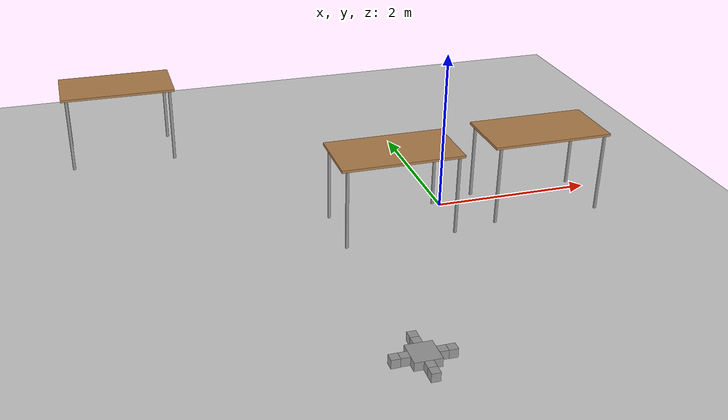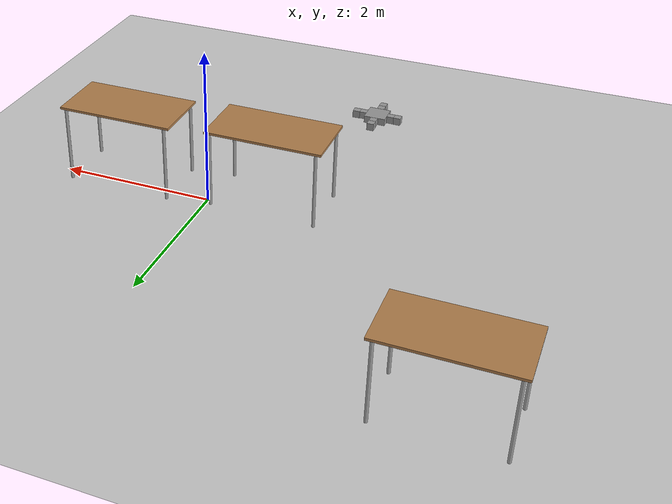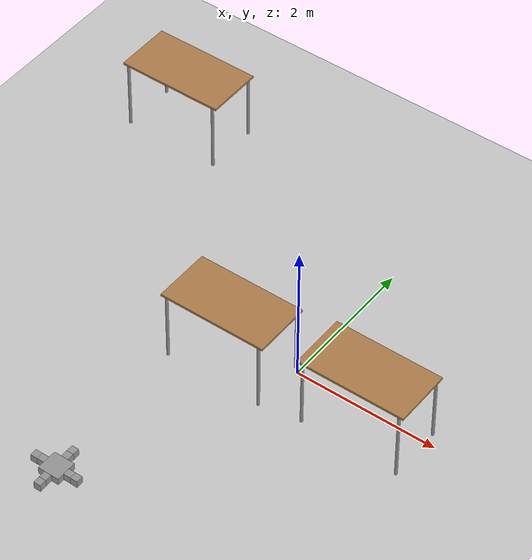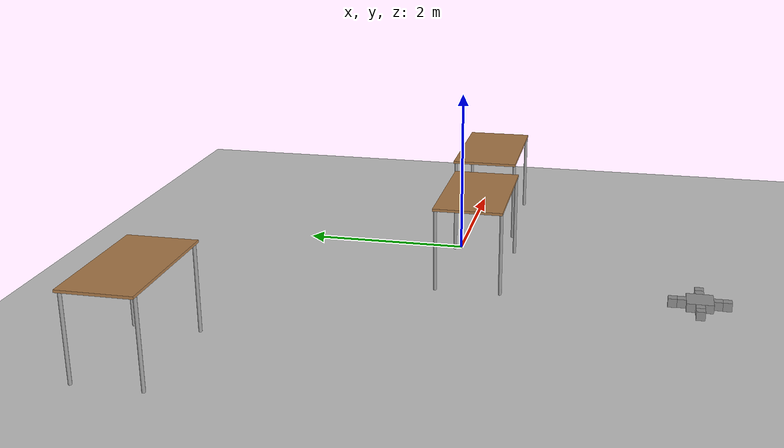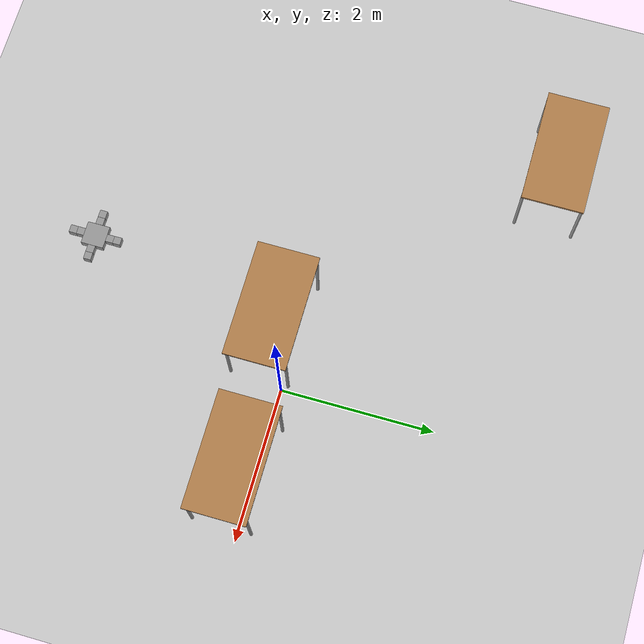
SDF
<sdf version="1.6">
 <world name="default">
  <model name="ground_plane">
   <static>1</static>
   <link name="link">
    <collision name="collision">
     <geometry><plane><normal>0 0 1</normal><size>100 100</size></plane></geometry>
     <surface>
      <contact><collide_bitmask>65535</collide_bitmask></contact>
      <friction><ode><mu>100</mu><mu2>50</mu2></ode></friction>
     </surface>
    </collision>
    <visual name="visual">
     <cast_shadows>0</cast_shadows>
     <geometry><plane><normal>0 0 1</normal><size>100 100</size></plane></geometry>
     <material>
      <script><uri>file://media/materials/scripts/gazebo.material</uri><name>Gazebo/Grey</name></script>
     </material>
    </visual>
   </link>
  </model>
  <model name="myLegged">
   <link name="link_0">
    <pose>0 0 0.044444 0 -0 0</pose>
    <inertial>
     <mass>1</mass>
     <inertia>
      <ixx>0.166667</ixx>
      <ixy>0</ixy>
      <ixz>0</ixz>
      <iyy>0.166667</iyy>
      <iyz>0</iyz>
      <izz>0.166667</izz>
     </inertia>
    </inertial>
    <visual name="visual">
     <geometry><box><size>0.3 0.3 0.1</size></box></geometry>
     <material>
      <lighting>1</lighting>
      <script><uri>file://media/materials/scripts/gazebo.material</uri><name>Gazebo/Grey</name></script>
      <shader type="pixel"><normal_map>__default__</normal_map></shader>
      <ambient>0.3 0.3 0.3 1</ambient>
      <diffuse>0.7 0.7 0.7 1</diffuse>
      <specular>0.01 0.01 0.01 1</specular>
      <emissive>0 0 0 1</emissive>
     </material>
    </visual>
    <collision name="collision">
     <geometry><box><size>0.3 0.3 0.1</size></box></geometry>
     <surface>
      <friction>
       <ode><mu>1</mu><mu2>1</mu2><fdir1>0 0 0</fdir1><slip1>0</slip1><slip2>0</slip2></ode>
       <torsional>
        <coefficient>1</coefficient>
        <patch_radius>0</patch_radius>
        <surface_radius>0</surface_radius>
        <use_patch_radius>1</use_patch_radius>
        <ode><slip>0</slip></ode>
       </torsional>
      </friction>
      <bounce><restitution_coefficient>0</restitution_coefficient><threshold>1e+06</threshold></bounce>
      <contact>
       <collide_without_contact>0</collide_without_contact>
       <collide_without_contact_bitmask>1</collide_without_contact_bitmask>
       <collide_bitmask>1</collide_bitmask>
       <ode>
        <soft_cfm>0</soft_cfm>
        <soft_erp>0.2</soft_erp>
        <kp>1e+13</kp>
        <kd>1</kd>
        <max_vel>0.01</max_vel>
        <min_depth>0</min_depth>
       </ode>
       <bullet>
        <split_impulse>1</split_impulse>
        <split_impulse_penetration_threshold>-0.01</split_impulse_penetration_threshold>
        <soft_cfm>0</soft_cfm>
        <soft_erp>0.2</soft_erp>
        <kp>1e+13</kp>
        <kd>1</kd>
       </bullet>
      </contact>
     </surface>
    </collision>
   </link>
   <link name="link_1">
    <pose>0 -0.2 0.044444 0 -0 0</pose>
    <inertial>
     <mass>1</mass>
     <inertia>
      <ixx>0.166667</ixx>
      <ixy>0</ixy>
      <ixz>0</ixz>
      <iyy>0.166667</iyy>
      <iyz>0</iyz>
      <izz>0.166667</izz>
     </inertia>
    </inertial>
    <visual name="visual">
     <geometry><box><size>0.1 0.1 0.1</size></box></geometry>
     <material>
      <lighting>1</lighting>
      <script><uri>file://media/materials/scripts/gazebo.material</uri><name>Gazebo/Grey</name></script>
      <shader type="pixel"><normal_map>__default__</normal_map></shader>
      <ambient>0.3 0.3 0.3 1</ambient>
      <diffuse>0.7 0.7 0.7 1</diffuse>
      <specular>0.01 0.01 0.01 1</specular>
      <emissive>0 0 0 1</emissive>
     </material>
    </visual>
    <collision name="collision">
     <geometry><box><size>0.1 0.1 0.1</size></box></geometry>
     <surface>
      <friction>
       <ode><mu>1</mu><mu2>1</mu2><fdir1>0 0 0</fdir1><slip1>0</slip1><slip2>0</slip2></ode>
       <torsional>
        <coefficient>1</coefficient>
        <patch_radius>0</patch_radius>
        <surface_radius>0</surface_radius>
        <use_patch_radius>1</use_patch_radius>
        <ode><slip>0</slip></ode>
       </torsional>
      </friction>
      <bounce><restitution_coefficient>0</restitution_coefficient><threshold>1e+06</threshold></bounce>
      <contact>
       <collide_without_contact>0</collide_without_contact>
       <collide_without_contact_bitmask>1</collide_without_contact_bitmask>
       <collide_bitmask>1</collide_bitmask>
       <ode>
        <soft_cfm>0</soft_cfm>
        <soft_erp>0.2</soft_erp>
        <kp>1e+13</kp>
        <kd>1</kd>
        <max_vel>0.01</max_vel>
        <min_depth>0</min_depth>
       </ode>
       <bullet>
        <split_impulse>1</split_impulse>
        <split_impulse_penetration_threshold>-0.01</split_impulse_penetration_threshold>
        <soft_cfm>0</soft_cfm>
        <soft_erp>0.2</soft_erp>
        <kp>1e+13</kp>
        <kd>1</kd>
       </bullet>
      </contact>
     </surface>
    </collision>
   </link>
   <link name="link_1_clone">
    <pose>-0.2 0 0.044444 0 -0 0</pose>
    <inertial>
     <mass>1</mass>
     <inertia>
      <ixx>0.166667</ixx>
      <ixy>0</ixy>
      <ixz>0</ixz>
      <iyy>0.166667</iyy>
      <iyz>0</iyz>
      <izz>0.166667</izz>
     </inertia>
    </inertial>
    <visual name="visual">
     <geometry><box><size>0.1 0.1 0.1</size></box></geometry>
     <material>
      <lighting>1</lighting>
      <script><uri>file://media/materials/scripts/gazebo.material</uri><name>Gazebo/Grey</name></script>
      <shader type="pixel"><normal_map>__default__</normal_map></shader>
      <ambient>0.3 0.3 0.3 1</ambient>
      <diffuse>0.7 0.7 0.7 1</diffuse>
      <specular>0.01 0.01 0.01 1</specular>
      <emissive>0 0 0 1</emissive>
     </material>
    </visual>
    <collision name="collision">
     <geometry><box><size>0.1 0.1 0.1</size></box></geometry>
     <surface>
      <friction>
       <ode><mu>1</mu><mu2>1</mu2><fdir1>0 0 0</fdir1><slip1>0</slip1><slip2>0</slip2></ode>
       <torsional>
        <coefficient>1</coefficient>
        <patch_radius>0</patch_radius>
        <surface_radius>0</surface_radius>
        <use_patch_radius>1</use_patch_radius>
        <ode><slip>0</slip></ode>
       </torsional>
      </friction>
      <bounce><restitution_coefficient>0</restitution_coefficient><threshold>1e+06</threshold></bounce>
      <contact>
       <collide_without_contact>0</collide_without_contact>
       <collide_without_contact_bitmask>1</collide_without_contact_bitmask>
       <collide_bitmask>1</collide_bitmask>
       <ode>
        <soft_cfm>0</soft_cfm>
        <soft_erp>0.2</soft_erp>
        <kp>1e+13</kp>
        <kd>1</kd>
        <max_vel>0.01</max_vel>
        <min_depth>0</min_depth>
       </ode>
       <bullet>
        <split_impulse>1</split_impulse>
        <split_impulse_penetration_threshold>-0.01</split_impulse_penetration_threshold>
        <soft_cfm>0</soft_cfm>
        <soft_erp>0.2</soft_erp>
        <kp>1e+13</kp>
        <kd>1</kd>
       </bullet>
      </contact>
     </surface>
    </collision>
   </link>
   <link name="link_1_clone_0">
    <pose>0.2 0 0.044444 0 -0 0</pose>
    <inertial>
     <mass>1</mass>
     <inertia>
      <ixx>0.166667</ixx>
      <ixy>0</ixy>
      <ixz>0</ixz>
      <iyy>0.166667</iyy>
      <iyz>0</iyz>
      <izz>0.166667</izz>
     </inertia>
    </inertial>
    <visual name="visual">
     <geometry><box><size>0.1 0.1 0.1</size></box></geometry>
     <material>
      <lighting>1</lighting>
      <script><uri>file://media/materials/scripts/gazebo.material</uri><name>Gazebo/Grey</name></script>
      <shader type="pixel"><normal_map>__default__</normal_map></shader>
      <ambient>0.3 0.3 0.3 1</ambient>
      <diffuse>0.7 0.7 0.7 1</diffuse>
      <specular>0.01 0.01 0.01 1</specular>
      <emissive>0 0 0 1</emissive>
     </material>
    </visual>
    <collision name="collision">
     <geometry><box><size>0.1 0.1 0.1</size></box></geometry>
     <surface>
      <friction>
       <ode><mu>1</mu><mu2>1</mu2><fdir1>0 0 0</fdir1><slip1>0</slip1><slip2>0</slip2></ode>
       <torsional>
        <coefficient>1</coefficient>
        <patch_radius>0</patch_radius>
        <surface_radius>0</surface_radius>
        <use_patch_radius>1</use_patch_radius>
        <ode><slip>0</slip></ode>
       </torsional>
      </friction>
      <bounce><restitution_coefficient>0</restitution_coefficient><threshold>1e+06</threshold></bounce>
      <contact>
       <collide_without_contact>0</collide_without_contact>
       <collide_without_contact_bitmask>1</collide_without_contact_bitmask>
       <collide_bitmask>1</collide_bitmask>
       <ode>
        <soft_cfm>0</soft_cfm>
        <soft_erp>0.2</soft_erp>
        <kp>1e+13</kp>
        <kd>1</kd>
        <max_vel>0.01</max_vel>
        <min_depth>0</min_depth>
       </ode>
       <bullet>
        <split_impulse>1</split_impulse>
        <split_impulse_penetration_threshold>-0.01</split_impulse_penetration_threshold>
        <soft_cfm>0</soft_cfm>
        <soft_erp>0.2</soft_erp>
        <kp>1e+13</kp>
        <kd>1</kd>
       </bullet>
      </contact>
     </surface>
    </collision>
   </link>
   <link name="link_1_clone_1">
    <pose>0 0.2 0.044444 0 -0 0</pose>
    <inertial>
     <mass>1</mass>
     <inertia>
      <ixx>0.166667</ixx>
      <ixy>0</ixy>
      <ixz>0</ixz>
      <iyy>0.166667</iyy>
      <iyz>0</iyz>
      <izz>0.166667</izz>
     </inertia>
    </inertial>
    <visual name="visual">
     <geometry><box><size>0.1 0.1 0.1</size></box></geometry>
     <material>
      <lighting>1</lighting>
      <script><uri>file://media/materials/scripts/gazebo.material</uri><name>Gazebo/Grey</name></script>
      <shader type="pixel"><normal_map>__default__</normal_map></shader>
      <ambient>0.3 0.3 0.3 1</ambient>
      <diffuse>0.7 0.7 0.7 1</diffuse>
      <specular>0.01 0.01 0.01 1</specular>
      <emissive>0 0 0 1</emissive>
     </material>
    </visual>
    <collision name="collision">
     <geometry><box><size>0.1 0.1 0.1</size></box></geometry>
     <surface>
      <friction>
       <ode><mu>1</mu><mu2>1</mu2><fdir1>0 0 0</fdir1><slip1>0</slip1><slip2>0</slip2></ode>
       <torsional>
        <coefficient>1</coefficient>
        <patch_radius>0</patch_radius>
        <surface_radius>0</surface_radius>
        <use_patch_radius>1</use_patch_radius>
        <ode><slip>0</slip></ode>
       </torsional>
      </friction>
      <bounce><restitution_coefficient>0</restitution_coefficient><threshold>1e+06</threshold></bounce>
      <contact>
       <collide_without_contact>0</collide_without_contact>
       <collide_without_contact_bitmask>1</collide_without_contact_bitmask>
       <collide_bitmask>1</collide_bitmask>
       <ode>
        <soft_cfm>0</soft_cfm>
        <soft_erp>0.2</soft_erp>
        <kp>1e+13</kp>
        <kd>1</kd>
        <max_vel>0.01</max_vel>
        <min_depth>0</min_depth>
       </ode>
       <bullet>
        <split_impulse>1</split_impulse>
        <split_impulse_penetration_threshold>-0.01</split_impulse_penetration_threshold>
        <soft_cfm>0</soft_cfm>
        <soft_erp>0.2</soft_erp>
        <kp>1e+13</kp>
        <kd>1</kd>
       </bullet>
      </contact>
     </surface>
    </collision>
   </link>
   <link name="link_2">
    <pose>0 -0.3 -0.055556 0 -0 0</pose>
    <inertial>
     <mass>1</mass>
     <inertia>
      <ixx>0.166667</ixx>
      <ixy>0</ixy>
      <ixz>0</ixz>
      <iyy>0.166667</iyy>
      <iyz>0</iyz>
      <izz>0.166667</izz>
     </inertia>
    </inertial>
    <visual name="visual">
     <geometry><box><size>0.1 0.1 0.3</size></box></geometry>
     <material>
      <lighting>1</lighting>
      <script><uri>file://media/materials/scripts/gazebo.material</uri><name>Gazebo/Grey</name></script>
      <shader type="pixel"><normal_map>__default__</normal_map></shader>
      <ambient>0.3 0.3 0.3 1</ambient>
      <diffuse>0.7 0.7 0.7 1</diffuse>
      <specular>0.01 0.01 0.01 1</specular>
      <emissive>0 0 0 1</emissive>
     </material>
    </visual>
    <collision name="collision">
     <geometry><box><size>0.1 0.1 0.3</size></box></geometry>
     <surface>
      <friction>
       <ode><mu>1</mu><mu2>1</mu2><fdir1>0 0 0</fdir1><slip1>0</slip1><slip2>0</slip2></ode>
       <torsional>
        <coefficient>1</coefficient>
        <patch_radius>0</patch_radius>
        <surface_radius>0</surface_radius>
        <use_patch_radius>1</use_patch_radius>
        <ode><slip>0</slip></ode>
       </torsional>
      </friction>
      <bounce><restitution_coefficient>0</restitution_coefficient><threshold>1e+06</threshold></bounce>
      <contact>
       <collide_without_contact>0</collide_without_contact>
       <collide_without_contact_bitmask>1</collide_without_contact_bitmask>
       <collide_bitmask>1</collide_bitmask>
       <ode>
        <soft_cfm>0</soft_cfm>
        <soft_erp>0.2</soft_erp>
        <kp>1e+13</kp>
        <kd>1</kd>
        <max_vel>0.01</max_vel>
        <min_depth>0</min_depth>
       </ode>
       <bullet>
        <split_impulse>1</split_impulse>
        <split_impulse_penetration_threshold>-0.01</split_impulse_penetration_threshold>
        <soft_cfm>0</soft_cfm>
        <soft_erp>0.2</soft_erp>
        <kp>1e+13</kp>
        <kd>1</kd>
       </bullet>
      </contact>
     </surface>
    </collision>
   </link>
   <link name="link_2_clone">
    <pose>-0.3 0 -0.055556 0 -0 0</pose>
    <inertial>
     <mass>1</mass>
     <inertia>
      <ixx>0.166667</ixx>
      <ixy>0</ixy>
      <ixz>0</ixz>
      <iyy>0.166667</iyy>
      <iyz>0</iyz>
      <izz>0.166667</izz>
     </inertia>
    </inertial>
    <visual name="visual">
     <geometry><box><size>0.1 0.1 0.3</size></box></geometry>
     <material>
      <lighting>1</lighting>
      <script><uri>file://media/materials/scripts/gazebo.material</uri><name>Gazebo/Grey</name></script>
      <shader type="pixel"><normal_map>__default__</normal_map></shader>
      <ambient>0.3 0.3 0.3 1</ambient>
      <diffuse>0.7 0.7 0.7 1</diffuse>
      <specular>0.01 0.01 0.01 1</specular>
      <emissive>0 0 0 1</emissive>
     </material>
    </visual>
    <collision name="collision">
     <geometry><box><size>0.1 0.1 0.3</size></box></geometry>
     <surface>
      <friction>
       <ode><mu>1</mu><mu2>1</mu2><fdir1>0 0 0</fdir1><slip1>0</slip1><slip2>0</slip2></ode>
       <torsional>
        <coefficient>1</coefficient>
        <patch_radius>0</patch_radius>
        <surface_radius>0</surface_radius>
        <use_patch_radius>1</use_patch_radius>
        <ode><slip>0</slip></ode>
       </torsional>
      </friction>
      <bounce><restitution_coefficient>0</restitution_coefficient><threshold>1e+06</threshold></bounce>
      <contact>
       <collide_without_contact>0</collide_without_contact>
       <collide_without_contact_bitmask>1</collide_without_contact_bitmask>
       <collide_bitmask>1</collide_bitmask>
       <ode>
        <soft_cfm>0</soft_cfm>
        <soft_erp>0.2</soft_erp>
        <kp>1e+13</kp>
        <kd>1</kd>
        <max_vel>0.01</max_vel>
        <min_depth>0</min_depth>
       </ode>
       <bullet>
        <split_impulse>1</split_impulse>
        <split_impulse_penetration_threshold>-0.01</split_impulse_penetration_threshold>
        <soft_cfm>0</soft_cfm>
        <soft_erp>0.2</soft_erp>
        <kp>1e+13</kp>
        <kd>1</kd>
       </bullet>
      </contact>
     </surface>
    </collision>
   </link>
   <link name="link_2_clone_0">
    <pose>0 0.3 -0.055556 0 -0 0</pose>
    <inertial>
     <mass>1</mass>
     <inertia>
      <ixx>0.166667</ixx>
      <ixy>0</ixy>
      <ixz>0</ixz>
      <iyy>0.166667</iyy>
      <iyz>0</iyz>
      <izz>0.166667</izz>
     </inertia>
    </inertial>
    <visual name="visual">
     <geometry><box><size>0.1 0.1 0.3</size></box></geometry>
     <material>
      <lighting>1</lighting>
      <script><uri>file://media/materials/scripts/gazebo.material</uri><name>Gazebo/Grey</name></script>
      <shader type="pixel"><normal_map>__default__</normal_map></shader>
      <ambient>0.3 0.3 0.3 1</ambient>
      <diffuse>0.7 0.7 0.7 1</diffuse>
      <specular>0.01 0.01 0.01 1</specular>
      <emissive>0 0 0 1</emissive>
     </material>
    </visual>
    <collision name="collision">
     <geometry><box><size>0.1 0.1 0.3</size></box></geometry>
     <surface>
      <friction>
       <ode><mu>1</mu><mu2>1</mu2><fdir1>0 0 0</fdir1><slip1>0</slip1><slip2>0</slip2></ode>
       <torsional>
        <coefficient>1</coefficient>
        <patch_radius>0</patch_radius>
        <surface_radius>0</surface_radius>
        <use_patch_radius>1</use_patch_radius>
        <ode><slip>0</slip></ode>
       </torsional>
      </friction>
      <bounce><restitution_coefficient>0</restitution_coefficient><threshold>1e+06</threshold></bounce>
      <contact>
       <collide_without_contact>0</collide_without_contact>
       <collide_without_contact_bitmask>1</collide_without_contact_bitmask>
       <collide_bitmask>1</collide_bitmask>
       <ode>
        <soft_cfm>0</soft_cfm>
        <soft_erp>0.2</soft_erp>
        <kp>1e+13</kp>
        <kd>1</kd>
        <max_vel>0.01</max_vel>
        <min_depth>0</min_depth>
       </ode>
       <bullet>
        <split_impulse>1</split_impulse>
        <split_impulse_penetration_threshold>-0.01</split_impulse_penetration_threshold>
        <soft_cfm>0</soft_cfm>
        <soft_erp>0.2</soft_erp>
        <kp>1e+13</kp>
        <kd>1</kd>
       </bullet>
      </contact>
     </surface>
    </collision>
   </link>
   <link name="link_2_clone_1">
    <pose>0.3 0 -0.055556 0 -0 0</pose>
    <inertial>
     <mass>1</mass>
     <inertia>
      <ixx>0.166667</ixx>
      <ixy>0</ixy>
      <ixz>0</ixz>
      <iyy>0.166667</iyy>
      <iyz>0</iyz>
      <izz>0.166667</izz>
     </inertia>
    </inertial>
    <visual name="visual">
     <geometry><box><size>0.1 0.1 0.3</size></box></geometry>
     <material>
      <lighting>1</lighting>
      <script><uri>file://media/materials/scripts/gazebo.material</uri><name>Gazebo/Grey</name></script>
      <shader type="pixel"><normal_map>__default__</normal_map></shader>
      <ambient>0.3 0.3 0.3 1</ambient>
      <diffuse>0.7 0.7 0.7 1</diffuse>
      <specular>0.01 0.01 0.01 1</specular>
      <emissive>0 0 0 1</emissive>
     </material>
    </visual>
    <collision name="collision">
     <geometry><box><size>0.1 0.1 0.3</size></box></geometry>
     <surface>
      <friction>
       <ode><mu>1</mu><mu2>1</mu2><fdir1>0 0 0</fdir1><slip1>0</slip1><slip2>0</slip2></ode>
       <torsional>
        <coefficient>1</coefficient>
        <patch_radius>0</patch_radius>
        <surface_radius>0</surface_radius>
        <use_patch_radius>1</use_patch_radius>
        <ode><slip>0</slip></ode>
       </torsional>
      </friction>
      <bounce><restitution_coefficient>0</restitution_coefficient><threshold>1e+06</threshold></bounce>
      <contact>
       <collide_without_contact>0</collide_without_contact>
       <collide_without_contact_bitmask>1</collide_without_contact_bitmask>
       <collide_bitmask>1</collide_bitmask>
       <ode>
        <soft_cfm>0</soft_cfm>
        <soft_erp>0.2</soft_erp>
        <kp>1e+13</kp>
        <kd>1</kd>
        <max_vel>0.01</max_vel>
        <min_depth>0</min_depth>
       </ode>
       <bullet>
        <split_impulse>1</split_impulse>
        <split_impulse_penetration_threshold>-0.01</split_impulse_penetration_threshold>
        <soft_cfm>0</soft_cfm>
        <soft_erp>0.2</soft_erp>
        <kp>1e+13</kp>
        <kd>1</kd>
       </bullet>
      </contact>
     </surface>
    </collision>
   </link>
   <joint name="link_0_JOINT_0" type="revolute">
    <parent>link_0</parent>
    <child>link_1</child>
    <pose>0 0.05 0 0 -0 0</pose>
    <axis>
     <xyz>0 0 1</xyz>
     <use_parent_model_frame>0</use_parent_model_frame>
     <limit>
      <lower>-1.79769e+308</lower>
      <upper>1.79769e+308</upper>
      <effort>-1</effort>
      <velocity>-1</velocity>
     </limit>
     <dynamics>
      <spring_reference>0</spring_reference>
      <spring_stiffness>0</spring_stiffness>
      <damping>0</damping>
     </dynamics>
    </axis>
    <physics>
     <ode><limit><cfm>0</cfm><erp>0.2</erp></limit><suspension><cfm>0</cfm><erp>0.2</erp></suspension></ode>
    </physics>
   </joint>
   <joint name="link_0_JOINT_1" type="revolute">
    <parent>link_0</parent>
    <child>link_1_clone_0</child>
    <pose>-0.05 0 0 0 -0 0</pose>
    <axis>
     <xyz>0 0 1</xyz>
     <use_parent_model_frame>0</use_parent_model_frame>
     <limit>
      <lower>-1.79769e+308</lower>
      <upper>1.79769e+308</upper>
      <effort>-1</effort>
      <velocity>-1</velocity>
     </limit>
     <dynamics>
      <spring_reference>0</spring_reference>
      <spring_stiffness>0</spring_stiffness>
      <damping>0</damping>
     </dynamics>
    </axis>
    <physics>
     <ode><limit><cfm>0</cfm><erp>0.2</erp></limit><suspension><cfm>0</cfm><erp>0.2</erp></suspension></ode>
    </physics>
   </joint>
   <joint name="link_0_JOINT_2" type="revolute">
    <parent>link_0</parent>
    <child>link_1_clone_1</child>
    <pose>0 -0.05 0 0 -0 0</pose>
    <axis>
     <xyz>0 0 1</xyz>
     <use_parent_model_frame>0</use_parent_model_frame>
     <limit>
      <lower>-1.79769e+308</lower>
      <upper>1.79769e+308</upper>
      <effort>-1</effort>
      <velocity>-1</velocity>
     </limit>
     <dynamics>
      <spring_reference>0</spring_reference>
      <spring_stiffness>0</spring_stiffness>
      <damping>0</damping>
      <friction>0</friction>
     </dynamics>
    </axis>
    <physics>
     <ode><limit><cfm>0</cfm><erp>0.2</erp></limit><suspension><cfm>0</cfm><erp>0.2</erp></suspension></ode>
    </physics>
   </joint>
   <joint name="link_0_JOINT_3" type="revolute">
    <parent>link_0</parent>
    <child>link_1_clone</child>
    <pose>0.05 0 0 0 -0 0</pose>
    <axis>
     <xyz>0 0 1</xyz>
     <use_parent_model_frame>0</use_parent_model_frame>
     <limit>
      <lower>-1.79769e+308</lower>
      <upper>1.79769e+308</upper>
      <effort>-1</effort>
      <velocity>-1</velocity>
     </limit>
     <dynamics>
      <spring_reference>0</spring_reference>
      <spring_stiffness>0</spring_stiffness>
      <damping>0</damping>
     </dynamics>
    </axis>
    <physics>
     <ode><limit><cfm>0</cfm><erp>0.2</erp></limit><suspension><cfm>0</cfm><erp>0.2</erp></suspension></ode>
    </physics>
   </joint>
   <joint name="link_1_JOINT_4" type="revolute">
    <parent>link_1</parent>
    <child>link_2</child>
    <pose>0 0.05 0.1 0 -0 0</pose>
    <axis>
     <xyz>1 0 0</xyz>
     <use_parent_model_frame>0</use_parent_model_frame>
     <limit>
      <lower>-1.79769e+308</lower>
      <upper>1.79769e+308</upper>
      <effort>-1</effort>
      <velocity>-1</velocity>
     </limit>
     <dynamics>
      <spring_reference>0</spring_reference>
      <spring_stiffness>0</spring_stiffness>
      <damping>0</damping>
      <friction>0</friction>
     </dynamics>
    </axis>
    <physics>
     <ode><limit><cfm>0</cfm><erp>0.2</erp></limit><suspension><cfm>0</cfm><erp>0.2</erp></suspension></ode>
    </physics>
   </joint>
   <joint name="link_1_clone_0_JOINT_5" type="revolute">
    <parent>link_1_clone_0</parent>
    <child>link_2_clone_1</child>
    <pose>-0.05 0 0.1 0 -0 0</pose>
    <axis>
     <xyz>0 1 0</xyz>
     <use_parent_model_frame>0</use_parent_model_frame>
     <limit>
      <lower>-1.79769e+308</lower>
      <upper>1.79769e+308</upper>
      <effort>-1</effort>
      <velocity>-1</velocity>
     </limit>
     <dynamics>
      <spring_reference>0</spring_reference>
      <spring_stiffness>0</spring_stiffness>
      <damping>0</damping>
     </dynamics>
    </axis>
    <physics>
     <ode><limit><cfm>0</cfm><erp>0.2</erp></limit><suspension><cfm>0</cfm><erp>0.2</erp></suspension></ode>
    </physics>
   </joint>
   <joint name="link_1_clone_1_JOINT_7" type="revolute">
    <parent>link_1_clone_1</parent>
    <child>link_2_clone_0</child>
    <pose>0 -0.05 0.1 0 -0 0</pose>
    <axis>
     <xyz>1 0 0</xyz>
     <use_parent_model_frame>0</use_parent_model_frame>
     <limit>
      <lower>-1.79769e+308</lower>
      <upper>1.79769e+308</upper>
      <effort>-1</effort>
      <velocity>-1</velocity>
     </limit>
     <dynamics>
      <spring_reference>0</spring_reference>
      <spring_stiffness>0</spring_stiffness>
      <damping>0</damping>
     </dynamics>
    </axis>
    <physics>
     <ode><limit><cfm>0</cfm><erp>0.2</erp></limit><suspension><cfm>0</cfm><erp>0.2</erp></suspension></ode>
    </physics>
   </joint>
   <joint name="link_1_clone_JOINT_6" type="revolute">
    <parent>link_1_clone</parent>
    <child>link_2_clone</child>
    <pose>0.05 0 0.1 0 -0 0</pose>
    <axis>
     <xyz>0 1 0</xyz>
     <use_parent_model_frame>0</use_parent_model_frame>
     <limit>
      <lower>-1.79769e+308</lower>
      <upper>1.79769e+308</upper>
      <effort>-1</effort>
      <velocity>-1</velocity>
     </limit>
     <dynamics>
      <spring_reference>0</spring_reference>
      <spring_stiffness>0</spring_stiffness>
      <damping>0</damping>
     </dynamics>
    </axis>
    <physics>
     <ode><limit><cfm>0</cfm><erp>0.2</erp></limit><suspension><cfm>0</cfm><erp>0.2</erp></suspension></ode>
    </physics>
   </joint>
   <static>0</static>
   <pose>-1.32647 -2.92864 0 0 -0 0</pose>
  </model>
  <model name="table">
   <static>1</static>
   <link name="link">
    <collision name="surface">
     <pose>0 0 1 0 -0 0</pose>
     <geometry><box><size>1.5 0.8 0.03</size></box></geometry>
     <surface><friction><ode><mu>0.6</mu><mu2>0.6</mu2></ode></friction></surface>
    </collision>
    <visual name="visual1">
     <pose>0 0 1 0 -0 0</pose>
     <geometry><box><size>1.5 0.8 0.03</size></box></geometry>
     <material>
      <script><uri>file://media/materials/scripts/gazebo.material</uri><name>Gazebo/Wood</name></script>
     </material>
    </visual>
    <collision name="front_left_leg">
     <pose>0.68 0.38 0.5 0 -0 0</pose>
     <geometry><cylinder><radius>0.02</radius><length>1</length></cylinder></geometry>
    </collision>
    <visual name="front_left_leg">
     <pose>0.68 0.38 0.5 0 -0 0</pose>
     <geometry><cylinder><radius>0.02</radius><length>1</length></cylinder></geometry>
     <material>
      <script><uri>file://media/materials/scripts/gazebo.material</uri><name>Gazebo/Grey</name></script>
     </material>
    </visual>
    <collision name="front_right_leg">
     <pose>0.68 -0.38 0.5 0 -0 0</pose>
     <geometry><cylinder><radius>0.02</radius><length>1</length></cylinder></geometry>
    </collision>
    <visual name="front_right_leg">
     <pose>0.68 -0.38 0.5 0 -0 0</pose>
     <geometry><cylinder><radius>0.02</radius><length>1</length></cylinder></geometry>
     <material>
      <script><uri>file://media/materials/scripts/gazebo.material</uri><name>Gazebo/Grey</name></script>
     </material>
    </visual>
    <collision name="back_right_leg">
     <pose>-0.68 -0.38 0.5 0 -0 0</pose>
     <geometry><cylinder><radius>0.02</radius><length>1</length></cylinder></geometry>
    </collision>
    <visual name="back_right_leg">
     <pose>-0.68 -0.38 0.5 0 -0 0</pose>
     <geometry><cylinder><radius>0.02</radius><length>1</length></cylinder></geometry>
     <material>
      <script><uri>file://media/materials/scripts/gazebo.material</uri><name>Gazebo/Grey</name></script>
     </material>
    </visual>
    <collision name="back_left_leg">
     <pose>-0.68 0.38 0.5 0 -0 0</pose>
     <geometry><cylinder><radius>0.02</radius><length>1</length></cylinder></geometry>
    </collision>
    <visual name="back_left_leg">
     <pose>-0.68 0.38 0.5 0 -0 0</pose>
     <geometry><cylinder><radius>0.02</radius><length>1</length></cylinder></geometry>
     <material>
      <script><uri>file://media/materials/scripts/gazebo.material</uri><name>Gazebo/Grey</name></script>
     </material>
    </visual>
   </link>
   <pose>-0.752165 -0.308891 0 0 -0 0</pose>
  </model>
  <model name="table_0">
   <static>1</static>
   <link name="link">
    <collision name="surface">
     <pose>0 0 1 0 -0 0</pose>
     <geometry><box><size>1.5 0.8 0.03</size></box></geometry>
     <surface><friction><ode><mu>0.6</mu><mu2>0.6</mu2></ode></friction></surface>
    </collision>
    <visual name="visual1">
     <pose>0 0 1 0 -0 0</pose>
     <geometry><box><size>1.5 0.8 0.03</size></box></geometry>
     <material>
      <script><uri>file://media/materials/scripts/gazebo.material</uri><name>Gazebo/Wood</name></script>
     </material>
    </visual>
    <collision name="front_left_leg">
     <pose>0.68 0.38 0.5 0 -0 0</pose>
     <geometry><cylinder><radius>0.02</radius><length>1</length></cylinder></geometry>
    </collision>
    <visual name="front_left_leg">
     <pose>0.68 0.38 0.5 0 -0 0</pose>
     <geometry><cylinder><radius>0.02</radius><length>1</length></cylinder></geometry>
     <material>
      <script><uri>file://media/materials/scripts/gazebo.material</uri><name>Gazebo/Grey</name></script>
     </material>
    </visual>
    <collision name="front_right_leg">
     <pose>0.68 -0.38 0.5 0 -0 0</pose>
     <geometry><cylinder><radius>0.02</radius><length>1</length></cylinder></geometry>
    </collision>
    <visual name="front_right_leg">
     <pose>0.68 -0.38 0.5 0 -0 0</pose>
     <geometry><cylinder><radius>0.02</radius><length>1</length></cylinder></geometry>
     <material>
      <script><uri>file://media/materials/scripts/gazebo.material</uri><name>Gazebo/Grey</name></script>
     </material>
    </visual>
    <collision name="back_right_leg">
     <pose>-0.68 -0.38 0.5 0 -0 0</pose>
     <geometry><cylinder><radius>0.02</radius><length>1</length></cylinder></geometry>
    </collision>
    <visual name="back_right_leg">
     <pose>-0.68 -0.38 0.5 0 -0 0</pose>
     <geometry><cylinder><radius>0.02</radius><length>1</length></cylinder></geometry>
     <material>
      <script><uri>file://media/materials/scripts/gazebo.material</uri><name>Gazebo/Grey</name></script>
     </material>
    </visual>
    <collision name="back_left_leg">
     <pose>-0.68 0.38 0.5 0 -0 0</pose>
     <geometry><cylinder><radius>0.02</radius><length>1</length></cylinder></geometry>
    </collision>
    <visual name="back_left_leg">
     <pose>-0.68 0.38 0.5 0 -0 0</pose>
     <geometry><cylinder><radius>0.02</radius><length>1</length></cylinder></geometry>
     <material>
      <script><uri>file://media/materials/scripts/gazebo.material</uri><name>Gazebo/Grey</name></script>
     </material>
    </visual>
   </link>
   <pose>1.1749 -0.213167 0 0 -0 0</pose>
  </model>
  <model name="table_1">
   <static>1</static>
   <link name="link">
    <collision name="surface">
     <pose>0 0 1 0 -0 0</pose>
     <geometry><box><size>1.5 0.8 0.03</size></box></geometry>
     <surface><friction><ode><mu>0.6</mu><mu2>0.6</mu2></ode></friction></surface>
    </collision>
    <visual name="visual1">
     <pose>0 0 1 0 -0 0</pose>
     <geometry><box><size>1.5 0.8 0.03</size></box></geometry>
     <material>
      <script><uri>file://media/materials/scripts/gazebo.material</uri><name>Gazebo/Wood</name></script>
     </material>
    </visual>
    <collision name="front_left_leg">
     <pose>0.68 0.38 0.5 0 -0 0</pose>
     <geometry><cylinder><radius>0.02</radius><length>1</length></cylinder></geometry>
    </collision>
    <visual name="front_left_leg">
     <pose>0.68 0.38 0.5 0 -0 0</pose>
     <geometry><cylinder><radius>0.02</radius><length>1</length></cylinder></geometry>
     <material>
      <script><uri>file://media/materials/scripts/gazebo.material</uri><name>Gazebo/Grey</name></script>
     </material>
    </visual>
    <collision name="front_right_leg">
     <pose>0.68 -0.38 0.5 0 -0 0</pose>
     <geometry><cylinder><radius>0.02</radius><length>1</length></cylinder></geometry>
    </collision>
    <visual name="front_right_leg">
     <pose>0.68 -0.38 0.5 0 -0 0</pose>
     <geometry><cylinder><radius>0.02</radius><length>1</length></cylinder></geometry>
     <material>
      <script><uri>file://media/materials/scripts/gazebo.material</uri><name>Gazebo/Grey</name></script>
     </material>
    </visual>
    <collision name="back_right_leg">
     <pose>-0.68 -0.38 0.5 0 -0 0</pose>
     <geometry><cylinder><radius>0.02</radius><length>1</length></cylinder></geometry>
    </collision>
    <visual name="back_right_leg">
     <pose>-0.68 -0.38 0.5 0 -0 0</pose>
     <geometry><cylinder><radius>0.02</radius><length>1</length></cylinder></geometry>
     <material>
      <script><uri>file://media/materials/scripts/gazebo.material</uri><name>Gazebo/Grey</name></script>
     </material>
    </visual>
    <collision name="back_left_leg">
     <pose>-0.68 0.38 0.5 0 -0 0</pose>
     <geometry><cylinder><radius>0.02</radius><length>1</length></cylinder></geometry>
    </collision>
    <visual name="back_left_leg">
     <pose>-0.68 0.38 0.5 0 -0 0</pose>
     <geometry><cylinder><radius>0.02</radius><length>1</length></cylinder></geometry>
     <material>
      <script><uri>file://media/materials/scripts/gazebo.material</uri><name>Gazebo/Grey</name></script>
     </material>
    </visual>
   </link>
   <pose>-3.71783 2.68089 0 0 -0 0</pose>
  </model>
 </world>
</sdf>
